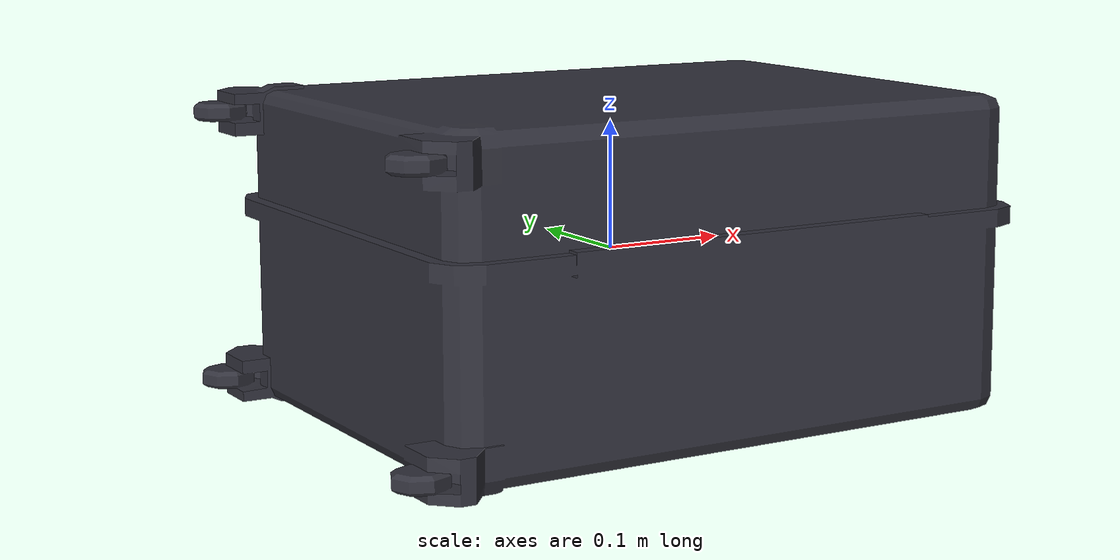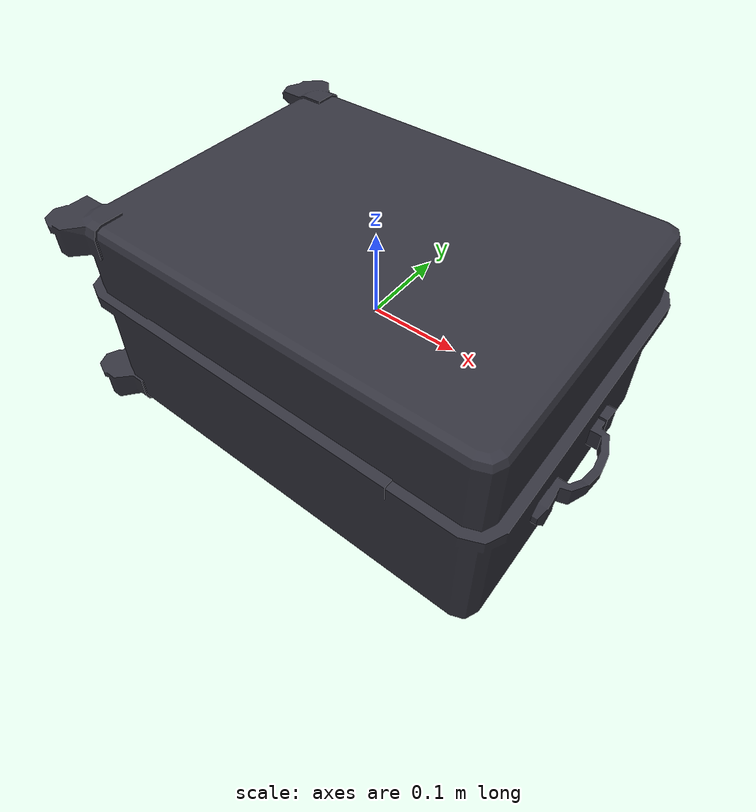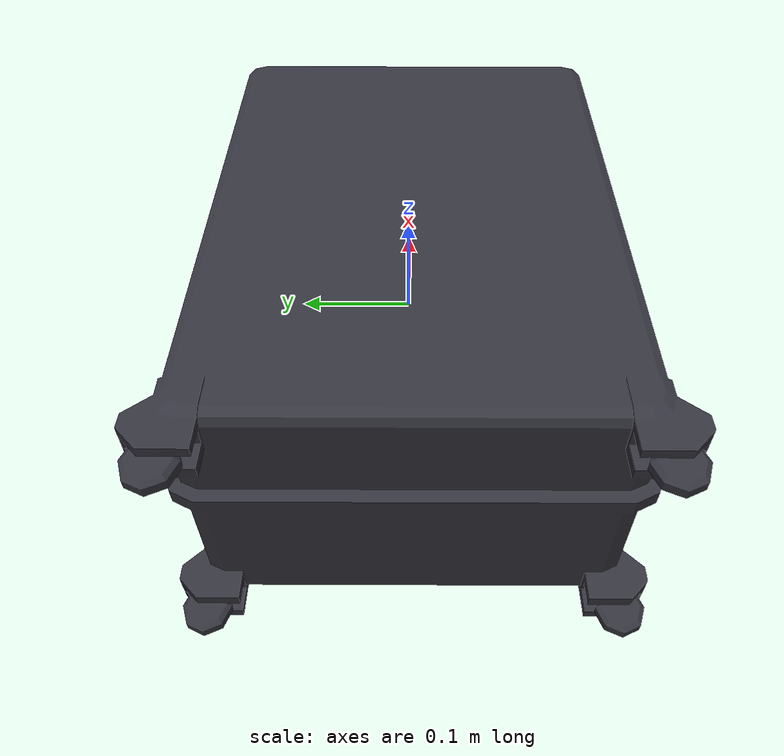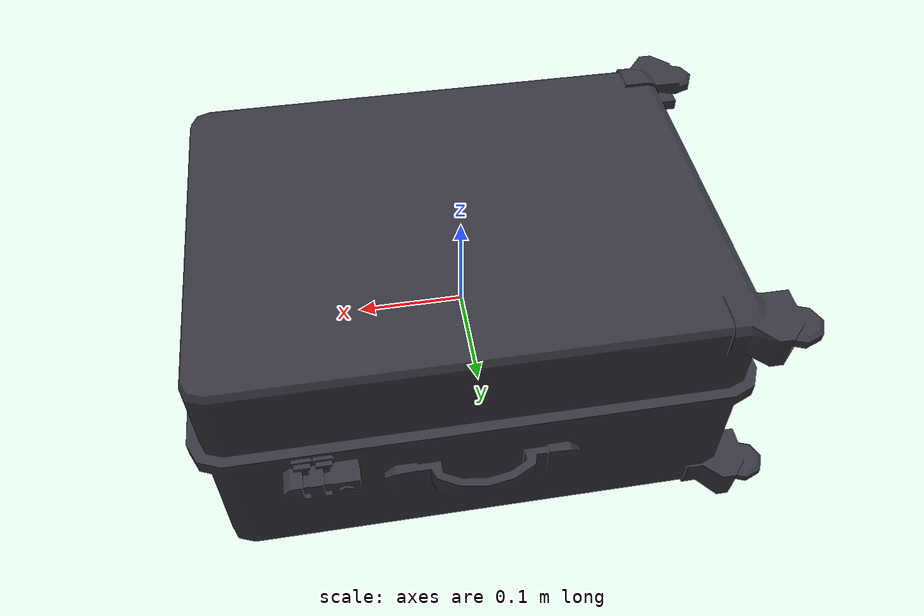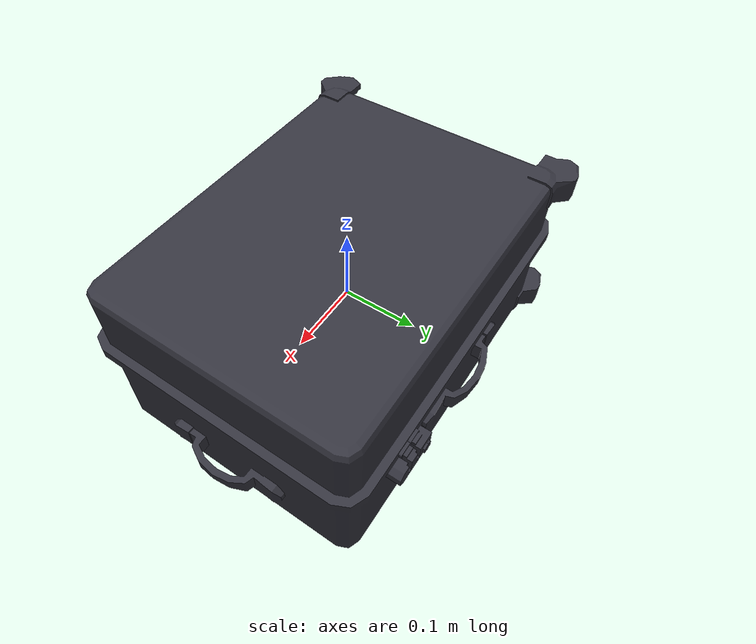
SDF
<?xml version="1.0"?>
<sdf version="1.6">
  <!-- Suitcase suitcase_loafbrr visual+collision 0.550 x 0.400 x 0.250 m, 8.00 kg -->
  <model name="suitcase_loafbrr_small">
    <link name="suitcase_link">
      <inertial>
        <mass>8.0000</mass>
        <inertia>
          <ixx>0.148333</ixx><ixy>0</ixy><ixz>0</ixz>
          <iyy>0.243333</iyy><iyz>0</iyz>
          <izz>0.308333</izz>
        </inertia>
      </inertial>
      <visual name="suitcase_loafbrr_small_visual">
        <geometry>
          <mesh>
            <uri>model://suitcase_loafbrr_small/meshes/suitcase.stl</uri>
            <scale>1.000000 1.000000 1.000000</scale>
          </mesh>
        </geometry>
        <material>
          <ambient>0.12 0.12 0.15 1</ambient>
          <diffuse>0.20 0.20 0.24 1</diffuse>
        </material>
      </visual>
      <collision name="body_collision">
        <geometry>
          <mesh>
            <uri>model://suitcase_loafbrr_small/meshes/suitcase.stl</uri>
            <scale>1.000000 1.000000 1.000000</scale>
          </mesh>
        </geometry>
        <surface>
          <friction><ode><mu>0.6</mu><mu2>0.6</mu2></ode></friction>
        </surface>
      </collision>
    </link>
  </model>
</sdf>
